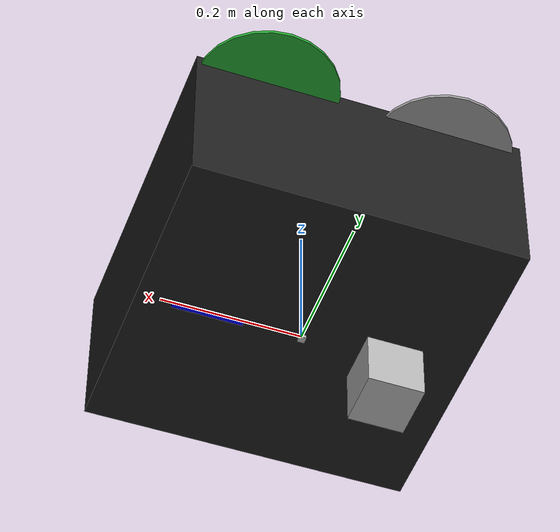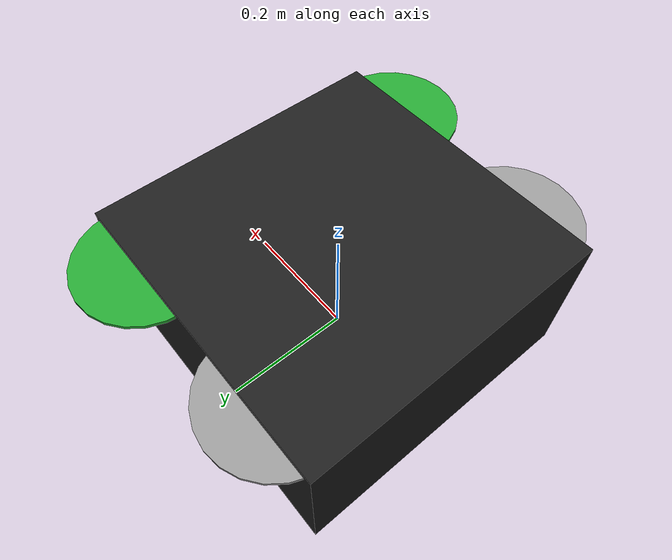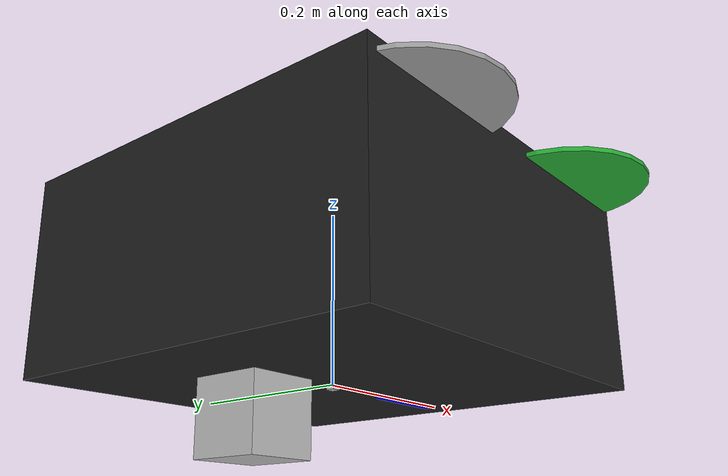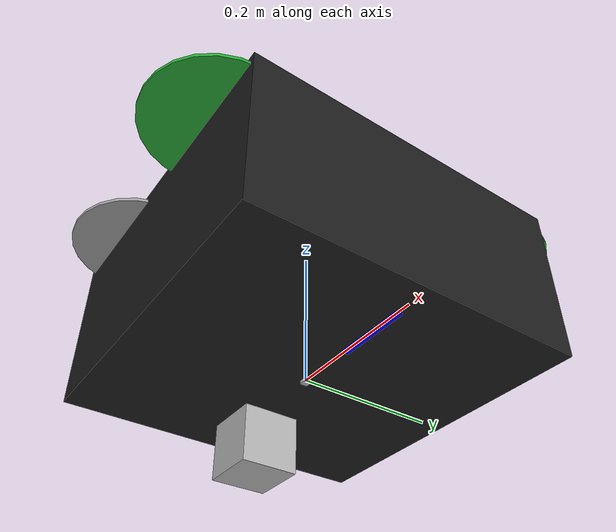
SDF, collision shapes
<?xml version="1.0" ?>
<sdf version='1.5'>
  <model name='iris_rplidar'>

    <include>
      <uri>model://iris</uri>
    </include>

    <include>
      <uri>model://lidar</uri>
      <pose>-0.12 0 0 0 3.1415 0</pose>
    </include>
    <joint name="lidar_joint" type="fixed">
      <child>lidar::link</child>
      <parent>iris::base_link</parent>
      <axis>
        <xyz>0 0 1</xyz>
        <limit>
          <upper>0</upper>
          <lower>0</lower>
        </limit>
      </axis>
    </joint>

    <include>
      <uri>model://fpv_cam</uri>
      <pose>0 0 0 0 1.5708 1.5708</pose>
    </include>
    <joint name="fpv_cam_joint" type="fixed">
      <child>fpv_cam::link</child>
      <parent>iris::base_link</parent>
      <axis>
        <xyz>0 0 1</xyz>
        <limit>
          <upper>0</upper>
          <lower>0</lower>
        </limit>
      </axis>
    </joint>

    <include>
      <uri>model://rplidar</uri>
      <pose>0 0 0.1 0 0 0</pose>
    </include>
    <joint name="rplidar_joint" type="revolute">
      <child>rplidar::link</child>
      <parent>iris::base_link</parent>
      <axis>
        <xyz>0 0 1</xyz>
        <limit>
          <upper>0</upper>
          <lower>0</lower>
        </limit>
      </axis>
    </joint>

    <include>
        <uri>model://r200</uri>
        <pose>0.1 0 0 0 0 0</pose>
      </include>
      <joint name="depth_camera_joint" type="revolute">
        <child>r200::link</child>
        <parent>iris::base_link</parent>
        <axis>
          <xyz>0 0 1</xyz>
          <limit>
            <upper>0</upper>
            <lower>0</lower>
          </limit>
        </axis>
      </joint>

  </model>
</sdf>
<!-- vim: set noet fenc=utf-8 ff=unix sts=0 sw=4 ts=4 : -->

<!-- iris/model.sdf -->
<sdf version='1.5'>
  <model name='iris-1'>
    <pose>0 0 0.194923 0 0 0</pose>
    <link name='iris-1-base_link'>
      <velocity_decay>
        <linear>0.0</linear>
        <angular>0.0</angular>
      </velocity_decay>
      <inertial>
        <pose>0 0 0 0 0 0</pose>
        <mass>1.5</mass>
        <inertia>
          <ixx>0.008</ixx>
          <ixy>0</ixy>
          <ixz>0</ixz>
          <iyy>0.015</iyy>
          <iyz>0</iyz>
          <izz>0.017</izz>
        </inertia>
      </inertial>
      <collision name='iris-1-base_link_collision'>
        <pose>0 0 -0.08 0 0 0</pose>
        <geometry>
          <box>
            <size>0.47 0.47 0.23</size>
          </box>
        </geometry>
        <surface>
          <contact>
            <ode>
              <max_vel>100.0</max_vel>
              <min_depth>0.001</min_depth>
            </ode>
          </contact>
          <friction>
            <ode>
              <mu>100000.0</mu>
              <mu2>100000.0</mu2>
            </ode>
          </friction>
        </surface>
      </collision>
      <visual name='iris-1-base_link_visual'>
        <geometry>
          <mesh>
            <uri>model://formation/vehicle1/iris/meshes/iris.dae</uri>
          </mesh>
        </geometry>
        <material>
          <script>
            <name>Gazebo/Black</name>
          </script>
        </material>
      </visual>

      <visual name='iris-1-front_left_leg_visual'>
        <pose>0.123 0.22 -0.11 0 0 0</pose>
        <geometry>
          <cylinder>
            <radius>0.005</radius>
            <length>0.17</length>
          </cylinder>
        </geometry>
        <material>
          <script>
            <name>Gazebo/FlatBlack</name>
            <uri>file://media/materials/scripts/gazebo.material</uri>
          </script>
        </material>
      </visual>
      <visual name='iris-1-front_right_leg_visual'>
        <pose>0.123 -0.22 -0.11 0 0 0</pose>
        <geometry>
          <cylinder>
            <radius>0.005</radius>
            <length>0.17</length>
          </cylinder>
        </geometry>
        <material>
          <script>
            <name>Gazebo/FlatBlack</name>
            <uri>file://media/materials/scripts/gazebo.material</uri>
          </script>
        </material>
      </visual>
      <visual name='iris-1-rear_left_leg_visual'>
        <pose>-0.140 0.21 -0.11 0 0 0</pose>
        <geometry>
          <cylinder>
            <radius>0.005</radius>
            <length>0.17</length>
          </cylinder>
        </geometry>
        <material>
          <script>
            <name>Gazebo/FlatBlack</name>
            <uri>file://media/materials/scripts/gazebo.material</uri>
          </script>
        </material>
      </visual>
      <visual name='iris-1-rear_right_leg_visual'>
        <pose>-0.140 -0.21 -0.11 0 0 0</pose>
        <geometry>
          <cylinder>
            <radius>0.005</radius>
            <length>0.17</length>
          </cylinder>
        </geometry>
        <material>
          <script>
            <name>Gazebo/FlatBlack</name>
            <uri>file://media/materials/scripts/gazebo.material</uri>
          </script>
        </material>
      </visual>
    </link>
    <link name='iris-1/ground_truth/odometry_sensorgt_link'>
      <pose>0 0 0 0 -0 0</pose>
      <inertial>
        <pose>0 0 0 0 -0 0</pose>
        <mass>0.15</mass>
        <inertia>
          <ixx>0.0001</ixx>
          <ixy>0</ixy>
          <ixz>0</ixz>
          <iyy>0.0002</iyy>
          <iyz>0</iyz>
          <izz>0.0002</izz>
        </inertia>
      </inertial>
    </link>
    <joint name='iris-1/ground_truth/odometry_sensorgt_joint' type='revolute'>
      <child>iris-1/ground_truth/odometry_sensorgt_link</child>
      <parent>iris-1-base_link</parent>
      <axis>
        <xyz>0 0 1</xyz>
        <limit>
          <lower>0</lower>
          <upper>0</upper>
          <effort>0</effort>
          <velocity>0</velocity>
        </limit>
        <dynamics>
          <damping>1.0</damping>
        </dynamics>
        <use_parent_model_frame>1</use_parent_model_frame>
      </axis>
      <physics>
        <ode>
          <implicit_spring_damper>1</implicit_spring_damper>
        </ode>
      </physics>
    </joint>
    <link name='iris-1/imu_link'>
      <inertial>
        <pose>0 0 0 0 0 0</pose>
        <mass>0.15</mass>
        <inertia>
          <ixx>0.00001</ixx>
          <ixy>0</ixy>
          <ixz>0</ixz>
          <iyy>0.00002</iyy>
          <iyz>0</iyz>
          <izz>0.00002</izz>
        </inertia>
      </inertial>
      <sensor name="iris-1-imu_sensor" type="imu">
        <pose>0 0 0 3.141593 0 0</pose>
        <always_on>1</always_on>
        <update_rate>1000.0</update_rate>
      </sensor>
    </link>
    <joint name='iris-1/imu_joint' type='revolute'>
      <child>iris-1/imu_link</child>
      <parent>iris-1-base_link</parent>
      <axis>
        <xyz>0 0 1</xyz>
        <limit>
          <lower>0</lower>
          <upper>0</upper>
          <effort>0</effort>
          <velocity>0</velocity>
        </limit>
        <dynamics>
          <damping>1.0</damping>
        </dynamics>
        <use_parent_model_frame>1</use_parent_model_frame>
      </axis>
      <physics>
        <ode>
          <implicit_spring_damper>1</implicit_spring_damper>
        </ode>
      </physics>
    </joint>
    <link name='iris-1-rotor_0'>
      <pose>0.13 -0.22 0.023 0 -0 0</pose>
      <inertial>
        <pose>0 0 0 0 -0 0</pose>
        <mass>0.025</mass>
        <inertia>
          <ixx>9.75e-06</ixx>
          <ixy>0</ixy>
          <ixz>0</ixz>
          <iyy>0.000166704</iyy>
          <iyz>0</iyz>
          <izz>0.000167604</izz>
        </inertia>
      </inertial>
      <collision name='iris-1-rotor_0_collision'>
        <pose>0 0 0 0 -0 0</pose>
        <geometry>
          <cylinder>
            <length>0.005</length>
            <radius>0.1</radius>
          </cylinder>
        </geometry>
        <surface>
          <contact>
            <ode/>
          </contact>
          <friction>
            <ode/>
          </friction>
        </surface>
      </collision>
      <visual name='iris-1-rotor_0_visual'>
        <pose>0 0 0 0 -0 0</pose>
        <geometry>
          <mesh>
            <scale>1 1 1</scale>
            <uri>model://formation/vehicle1/iris/meshes/iris_prop_ccw.dae</uri>
          </mesh>
        </geometry>
        <material>
          <script>
            <name>Gazebo/Green</name>
            <uri>__default__</uri>
          </script>
        </material>
      </visual>
      <gravity>1</gravity>
      <velocity_decay/>
      <self_collide>0</self_collide>
    </link>
    <joint name='iris-1-rotor_0_joint' type='revolute'>
      <child>iris-1-rotor_0</child>
      <parent>iris-1-base_link</parent>
      <axis>
        <xyz>0 0 1</xyz>
        <limit>
          <lower>-1e+16</lower>
          <upper>1e+16</upper>
        </limit>
        <dynamics>
          <damping>0.004</damping>
        </dynamics>
        <use_parent_model_frame>1</use_parent_model_frame>
      </axis>
      <physics>
        <ode>
          <implicit_spring_damper>1</implicit_spring_damper>
        </ode>
      </physics>
    </joint>
    <link name='iris-1-rotor_1'>
      <pose>-0.13 0.2 0.023 0 -0 0</pose>
      <inertial>
        <pose>0 0 0 0 -0 0</pose>
        <mass>0.025</mass>
        <inertia>
          <ixx>9.75e-06</ixx>
          <ixy>0</ixy>
          <ixz>0</ixz>
          <iyy>0.000166704</iyy>
          <iyz>0</iyz>
          <izz>0.000167604</izz>
        </inertia>
      </inertial>
      <collision name='iris-1-rotor_1_collision'>
        <pose>0 0 0 0 -0 0</pose>
        <geometry>
          <cylinder>
            <length>0.005</length>
            <radius>0.1</radius>
          </cylinder>
        </geometry>
        <surface>
          <contact>
            <ode/>
          </contact>
          <friction>
            <ode/>
          </friction>
        </surface>
      </collision>
      <visual name='iris-1-rotor_1_visual'>
        <pose>0 0 0 0 -0 0</pose>
        <geometry>
          <mesh>
            <scale>1 1 1</scale>
            <uri>model://formation/vehicle1/iris/meshes/iris_prop_ccw.dae</uri>
          </mesh>
        </geometry>
        <material>
          <script>
            <name>Gazebo/Grey</name>
            <uri>__default__</uri>
          </script>
        </material>
      </visual>
      <gravity>1</gravity>
      <velocity_decay/>
      <self_collide>0</self_collide>
    </link>
    <joint name='iris-1-rotor_1_joint' type='revolute'>
      <child>iris-1-rotor_1</child>
      <parent>iris-1-base_link</parent>
      <axis>
        <xyz>0 0 1</xyz>
        <limit>
          <lower>-1e+16</lower>
          <upper>1e+16</upper>
        </limit>
        <dynamics>
          <damping>0.004</damping>
        </dynamics>
        <use_parent_model_frame>1</use_parent_model_frame>
      </axis>
      <physics>
        <ode>
          <implicit_spring_damper>1</implicit_spring_damper>
        </ode>
      </physics>
    </joint>
    <link name='iris-1-rotor_2'>
      <pose>0.13 0.22 0.023 0 -0 0</pose>
      <inertial>
        <pose>0 0 0 0 -0 0</pose>
        <mass>0.025</mass>
        <inertia>
          <ixx>9.75e-06</ixx>
          <ixy>0</ixy>
          <ixz>0</ixz>
          <iyy>0.000166704</iyy>
          <iyz>0</iyz>
          <izz>0.000167604</izz>
        </inertia>
      </inertial>
      <collision name='iris-1-rotor_2_collision'>
        <pose>0 0 0 0 -0 0</pose>
        <geometry>
          <cylinder>
            <length>0.005</length>
            <radius>0.1</radius>
          </cylinder>
        </geometry>
        <surface>
          <contact>
            <ode/>
          </contact>
          <friction>
            <ode/>
          </friction>
        </surface>
      </collision>
      <visual name='iris-1-rotor_2_visual'>
        <pose>0 0 0 0 -0 0</pose>
        <geometry>
          <mesh>
            <scale>1 1 1</scale>
            <uri>model://formation/vehicle1/iris/meshes/iris_prop_cw.dae</uri>
          </mesh>
        </geometry>
        <material>
          <script>
            <name>Gazebo/Green</name>
            <uri>__default__</uri>
          </script>
        </material>
      </visual>
      <gravity>1</gravity>
      <velocity_decay/>
      <self_collide>0</self_collide>
    </link>
    <joint name='iris-1-rotor_2_joint' type='revolute'>
      <child>iris-1-rotor_2</child>
      <parent>iris-1-base_link</parent>
      <axis>
        <xyz>0 0 1</xyz>
        <limit>
          <lower>-1e+16</lower>
          <upper>1e+16</upper>
        </limit>
        <dynamics>
          <damping>0.004</damping>
        </dynamics>
        <use_parent_model_frame>1</use_parent_model_frame>
      </axis>
      <physics>
        <ode>
          <implicit_spring_damper>1</implicit_spring_damper>
        </ode>
      </physics>
    </joint>
    <link name='iris-1-rotor_3'>
      <pose>-0.13 -0.2 0.023 0 -0 0</pose>
      <inertial>
        <pose>0 0 0 0 -0 0</pose>
        <mass>0.025</mass>
        <inertia>
          <ixx>9.75e-06</ixx>
          <ixy>0</ixy>
          <ixz>0</ixz>
          <iyy>0.000166704</iyy>
          <iyz>0</iyz>
          <izz>0.000167604</izz>
        </inertia>
      </inertial>
      <collision name='iris-1-rotor_3_collision'>
        <pose>0 0 0 0 -0 0</pose>
        <geometry>
          <cylinder>
            <length>0.005</length>
            <radius>0.1</radius>
          </cylinder>
        </geometry>
        <surface>
          <contact>
            <ode/>
          </contact>
          <friction>
            <ode/>
          </friction>
        </surface>
      </collision>
      <visual name='iris-1-rotor_3_visual'>
        <pose>0 0 0 0 -0 0</pose>
        <geometry>
          <mesh>
            <scale>1 1 1</scale>
            <uri>model://formation/vehicle1/iris/meshes/iris_prop_cw.dae</uri>
          </mesh>
        </geometry>
        <material>
          <script>
            <name>Gazebo/Grey</name>
            <uri>__default__</uri>
          </script>
        </material>
      </visual>
      <gravity>1</gravity>
      <velocity_decay/>
      <self_collide>0</self_collide>
    </link>
    <joint name='iris-1-rotor_3_joint' type='revolute'>
      <child>iris-1-rotor_3</child>
      <parent>iris-1-base_link</parent>
      <axis>
        <xyz>0 0 1</xyz>
        <limit>
          <lower>-1e+16</lower>
          <upper>1e+16</upper>
        </limit>
        <dynamics>
          <damping>0.004</damping>
        </dynamics>
        <use_parent_model_frame>1</use_parent_model_frame>
      </axis>
      <physics>
        <ode>
          <implicit_spring_damper>1</implicit_spring_damper>
        </ode>
      </physics>
    </joint>
    <static>0</static>
  </model>
</sdf>

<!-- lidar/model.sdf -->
<sdf version='1.6'>
  <model name='lidar'>
    <link name='link'>
      <inertial>
        <mass>0.1</mass>
        <inertia>
          <ixx>0.17</ixx>
          <ixy>0.00</ixy>
          <ixz>0.00</ixz>
          <iyy>0.17</iyy>
          <iyz>0.00</iyz>
          <izz>0.17</izz>
        </inertia>
      </inertial>
      <pose frame=''>0 0 0 0 -0 0</pose>
      <visual name='visual'>
        <pose frame=''>0 0 0 0 -0 0</pose>
        <geometry>
          <mesh>
            <uri>model://laser_robot/lidar/meshes/lidar.obj</uri>
            <scale>1 1 1</scale>
          </mesh>
        </geometry>
        <transparency>0</transparency>
        <cast_shadows>1</cast_shadows>
      </visual>
      <collision name='collision'>
        <laser_retro>0</laser_retro>
        <max_contacts>10</max_contacts>
        <pose frame=''>0 0 0.05 0 -0 0</pose>
        <geometry>
          <mesh>
            <uri>model://laser_robot/lidar/meshes/lidar.obj</uri>
            <scale>1 1 1</scale>
          </mesh>
        </geometry>
        <surface>
          <friction>
            <ode>
              <mu>1</mu>
              <mu2>1</mu2>
              <fdir1>0 0 0</fdir1>
              <slip1>0</slip1>
              <slip2>0</slip2>
            </ode>
            <torsional>
              <coefficient>1</coefficient>
              <patch_radius>1</patch_radius>
              <surface_radius>1</surface_radius>
              <use_patch_radius>1</use_patch_radius>
              <ode>
                <slip>0</slip>
              </ode>
            </torsional>
          </friction>
          <bounce>
            <restitution_coefficient>1</restitution_coefficient>
            <threshold>1e+06</threshold>
          </bounce>
          <contact>
            <collide_without_contact>0</collide_without_contact>
            <collide_without_contact_bitmask>1</collide_without_contact_bitmask>
            <collide_bitmask>1</collide_bitmask>
            <ode>
              <soft_cfm>0</soft_cfm>
              <soft_erp>0.2</soft_erp>
              <kp>1e+13</kp>
              <kd>1</kd>
              <max_vel>0.01</max_vel>
              <min_depth>0</min_depth>
            </ode>
            <bullet>
              <split_impulse>1</split_impulse>
              <split_impulse_penetration_threshold>-0.01</split_impulse_penetration_threshold>
              <soft_cfm>0</soft_cfm>
              <soft_erp>0.2</soft_erp>
              <kp>1e+13</kp>
              <kd>1</kd>
            </bullet>
          </contact>
        </surface>
      </collision>
    </link>
    <static>0</static>
    <allow_auto_disable>1</allow_auto_disable>
  </model>
</sdf>

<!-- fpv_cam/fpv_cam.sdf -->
<sdf version='1.6'>
    <model name='fpv_cam'>
    <pose>-0.158979 -0.04405 0.045074 0 -0 0</pose>
      <link name='link'>
        <inertial>
          <mass>0.015</mass>
          <inertia>
            <ixx>4.15e-6</ixx>
          <ixy>0</ixy>
          <ixz>0</ixz>
          <iyy>2.407e-6</iyy>
          <iyz>0</iyz>
          <izz>2.407e-6</izz>
          </inertia>
        </inertial>
        <collision name='collision'>
          <geometry>
            <box>
              <size>0.01 0.01 0.01</size>
            </box>
          </geometry>
          <max_contacts>10</max_contacts>
          <surface>
            <contact>
              <ode/>
            </contact>
            <bounce/>
            <friction>
              <ode/>
            </friction>
          </surface>
        </collision>
        <visual name='visual'>
          <geometry>
            <box>
              <size>0.01 0.01 0.01</size>
            </box>
          </geometry>
        </visual>
        <sensor name='camera' type='camera'>
          <camera name='__default__'>
            <horizontal_fov>1.047</horizontal_fov>
            <image>
              <width>1280</width>
              <height>720</height>
            </image>
            <clip>
              <near>0.1</near>
              <far>100</far>
            </clip>
            <lens>
              <type>custom</type>
              <custom_function>
                <c1>1.05</c1>
                <c2>4</c2>
                <f>1</f>
                <fun>tan</fun>
              </custom_function>
              <scale_to_hfov>1</scale_to_hfov>
              <cutoff_angle>3.1415</cutoff_angle>
              <env_texture_size>1080</env_texture_size>
            </lens>
          </camera>
          <always_on>1</always_on>
          <update_rate>30</update_rate>
          <visualize>1</visualize>
          <plugin name='camera_plugin' filename='libgazebo_ros_camera.so'>
              <robotNamespace></robotNamespace>
            <alwaysOn>true</alwaysOn>
            <imageTopicName>image_raw</imageTopicName>
            <cameraInfoTopicName>camera_info</cameraInfoTopicName>
            <updateRate>30.0</updateRate>
            <cameraName>usb_cam</cameraName>
            <frameName>/robot_camera_link</frameName>
            <CxPrime>320.5</CxPrime>
            <Cx>320.5</Cx>
            <Cy>240.5</Cy>
            <hackBaseline>0</hackBaseline>
            <focalLength>277.191356</focalLength>
            <distortionK1>0.0</distortionK1>
            <distortionK2>0.0</distortionK2>
            <distortionK3>0.0</distortionK3>
            <distortionT1>0.0</distortionT1>
            <distortionT2>0.0</distortionT2>
          </plugin>
          <!-- GStreamer camera plugin (needs a lot of CPU! Consider lowering the
             camera image size) -->
          <plugin name="GstCameraPlugin" filename="libgazebo_gst_camera_plugin.so">
            <robotNamespace></robotNamespace>
            <udpPort>5600</udpPort>
          </plugin>
        </sensor>
        <self_collide>0</self_collide>
        <kinematic>0</kinematic>
      </link>
  </model>
</sdf>

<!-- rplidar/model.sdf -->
<sdf version="1.5">
  <model name="rplidar">
    <link name="link">

      <inertial>
        <pose>0 0 0 0 0 0</pose>
        <mass>0.19</mass>
        <inertia>
          <ixx>4.15e-6</ixx>
          <ixy>0</ixy>
          <ixz>0</ixz>
          <iyy>2.407e-6</iyy>
          <iyz>0</iyz>
          <izz>2.407e-6</izz>
        </inertia>
      </inertial>

      <visual name="visual">
        <geometry>
          <box>
            <size>0.02 0.05 0.05</size>
          </box>
        </geometry>
      </visual>

      <sensor name="laser" type="gpu_ray">
        <ray>
          <scan>
            <horizontal>
              <samples>360</samples>
              <resolution>1</resolution>
              <min_angle>-3.14</min_angle>
              <max_angle>3.14</max_angle>
            </horizontal>
          </scan>
          <range>
            <min>0.2</min>
            <max>20</max>
            <resolution>0.05</resolution>
          </range>
          <noise>
            <type>gaussian</type>
            <mean>0.0</mean>
            <stddev>0.01</stddev>
          </noise>
        </ray>
        <plugin name="laser" filename="libGpuRayPlugin.so" />
        <plugin name="gazebo_ros_head_rplidar_controller" filename="libgazebo_ros_gpu_laser.so">
          <topicName>/scan</topicName>
          <frameName>laser</frameName>
        </plugin>
        <always_on>1</always_on>
        <update_rate>5.5</update_rate>
        <visualize>true</visualize>
      </sensor>
    </link>
  </model>
</sdf>

<!-- vim: set et fenc= ff=unix sts=0 sw=2 ts=2 : -->

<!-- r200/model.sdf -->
<sdf version="1.5">
  <model name="r200">
    <link name="r200_link">
      <pose>0 0 0 0 0 0</pose>
      <collision name="r200_collision">
        <geometry>
          <mesh>
            <uri>model://r200/meshes/r200.dae</uri>
            <scale>1 1 1</scale>
          </mesh>
        </geometry>
	<surface>
	  <friction>
	    <ode>
	      <mu>1.0</mu>
	      <mu2>1.0</mu2>
	    </ode>
	  </friction>
	</surface>
      </collision>
      <visual name="r200">
        <geometry>
          <mesh>
            <uri>model://r200/meshes/r200.dae</uri>
            <scale>1 1 1</scale>
          </mesh>
        </geometry>
        <cast_shadows>false</cast_shadows>
      </visual>
    </link>
    <static>true</static>
  </model>
</sdf>
